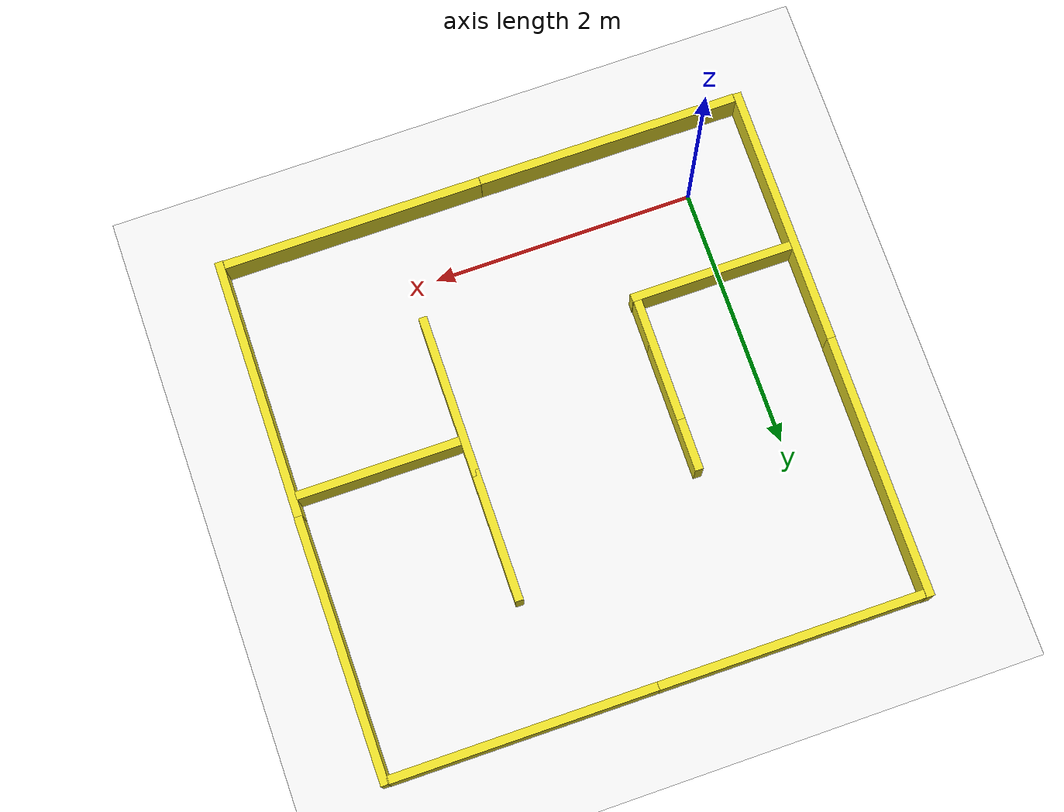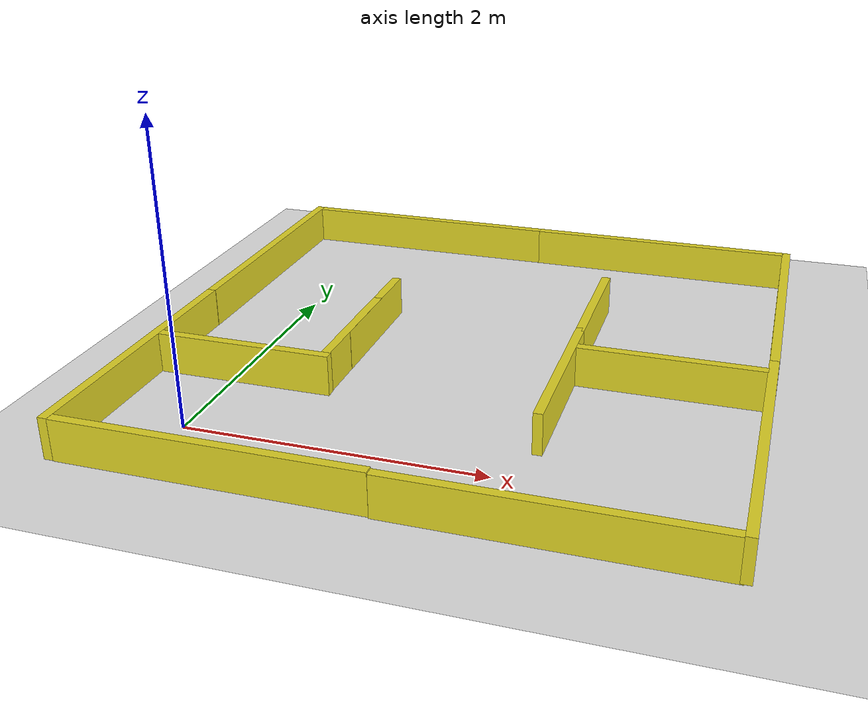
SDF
<sdf version="1.7">
 <world name="default">
  <model name="ground_plane">
   <static>1</static>
   <link name="link">
    <collision name="collision">
     <geometry><plane><normal>0 0 1</normal><size>20 20</size></plane></geometry>
     <surface>
      <contact><collide_bitmask>65535</collide_bitmask></contact>
      <friction><ode><mu>100</mu><mu2>50</mu2></ode></friction>
     </surface>
    </collision>
    <visual name="visual">
     <cast_shadows>0</cast_shadows>
     <geometry><plane><normal>0 0 1</normal><size>20 20</size></plane></geometry>
     <material>
      <script><uri>file://media/materials/scripts/gazebo.material</uri><name>Gazebo/White</name></script>
     </material>
    </visual>
   </link>
  </model>
  <gravity>0 0 -9.8</gravity>
  <magnetic_field>6e-06 2.3e-05 -4.2e-05</magnetic_field>
  <atmosphere type="adiabatic"/>
  <physics type="ode">
   <max_step_size>0.001</max_step_size>
   <real_time_factor>1</real_time_factor>
   <real_time_update_rate>1000</real_time_update_rate>
  </physics>
  <scene><ambient>0.4 0.4 0.4 1</ambient><background>0.7 0.7 0.7 1</background><shadows>1</shadows></scene>
  <spherical_coordinates>
   <surface_model>EARTH_WGS84</surface_model>
   <latitude_deg>0</latitude_deg>
   <longitude_deg>0</longitude_deg>
   <elevation>0</elevation>
   <heading_deg>0</heading_deg>
  </spherical_coordinates>
  <light name="sun" type="directional">
   <pose>13.0104 0.905764 10 0 -0 0</pose>
   <diffuse>0.8 0.8 0.8 1</diffuse>
   <specular>0.2 0.2 0.2 1</specular>
   <attenuation>
    <range>1000</range>
    <constant>0.9</constant>
    <linear>0.01</linear>
    <quadratic>0.001</quadratic>
   </attenuation>
   <direction>-0.5 0.1 -0.9</direction>
   <spot><inner_angle>0</inner_angle><outer_angle>0</outer_angle><falloff>0</falloff></spot>
  </light>
  <model name="unit_box_1">
   <pose>2.4706 -0.543063 0.13387 0 -2.2e-05 -1.57097</pose>
   <static>1</static>
   <link name="link">
    <inertial>
     <mass>1</mass>
     <inertia>
      <ixx>0.166667</ixx>
      <ixy>0</ixy>
      <ixz>0</ixz>
      <iyy>0.166667</iyy>
      <iyz>0</iyz>
      <izz>0.166667</izz>
     </inertia>
    </inertial>
    <collision name="collision"><geometry><box><size>0.063652 2.00615 0.284898</size></box></geometry></collision>
    <visual name="visual">
     <geometry><box><size>0.063652 2.00615 0.284898</size></box></geometry>
     <material>
      <script><name>Gazebo/DarkYellow</name><uri>file://media/materials/scripts/gazebo.material</uri></script>
     </material>
    </visual>
   </link>
  </model>
  <model name="unit_box_2">
   <pose>-0.570639 0.437784 0.142393 5.7e-05 1e-06 3.14006</pose>
   <static>1</static>
   <link name="link">
    <inertial>
     <mass>1</mass>
     <inertia>
      <ixx>0.166667</ixx>
      <ixy>0</ixy>
      <ixz>0</ixz>
      <iyy>0.166667</iyy>
      <iyz>0</iyz>
      <izz>0.166667</izz>
     </inertia>
    </inertial>
    <collision name="collision"><geometry><box><size>0.063652 2.00615 0.284898</size></box></geometry></collision>
    <visual name="visual">
     <geometry><box><size>0.063652 2.00615 0.284898</size></box></geometry>
     <material>
      <script><name>Gazebo/DarkYellow</name><uri>file://media/materials/scripts/gazebo.material</uri></script>
     </material>
    </visual>
   </link>
  </model>
  <model name="unit_box_3">
   <static>1</static>
   <pose>-0.565895 2.44425 0.142449 0 -9e-06 3.14013</pose>
   <link name="link">
    <inertial>
     <mass>1</mass>
     <inertia>
      <ixx>0.166667</ixx>
      <ixy>0</ixy>
      <ixz>0</ixz>
      <iyy>0.166667</iyy>
      <iyz>0</iyz>
      <izz>0.166667</izz>
     </inertia>
    </inertial>
    <collision name="collision"><geometry><box><size>0.063652 2.00615 0.284898</size></box></geometry></collision>
    <visual name="visual">
     <geometry><box><size>0.063652 2.00615 0.284898</size></box></geometry>
     <material>
      <script><name>Gazebo/DarkYellow</name><uri>file://media/materials/scripts/gazebo.material</uri></script>
     </material>
    </visual>
   </link>
  </model>
  <model name="unit_box_7">
   <pose>3.50191 2.4302 0.142449 0 -5e-06 -3.14113</pose>
   <static>1</static>
   <link name="link">
    <inertial>
     <mass>1</mass>
     <inertia>
      <ixx>0.166667</ixx>
      <ixy>0</ixy>
      <ixz>0</ixz>
      <iyy>0.166667</iyy>
      <iyz>0</iyz>
      <izz>0.166667</izz>
     </inertia>
    </inertial>
    <collision name="collision"><geometry><box><size>0.063652 2.00615 0.284898</size></box></geometry></collision>
    <visual name="visual">
     <geometry><box><size>0.063652 2.00615 0.284898</size></box></geometry>
     <material>
      <script><name>Gazebo/DarkYellow</name><uri>file://media/materials/scripts/gazebo.material</uri></script>
     </material>
    </visual>
   </link>
  </model>
  <model name="unit_box_13">
   <pose>0.463439 -0.539309 0.14245 0 2.2e-05 -1.57277</pose>
   <static>1</static>
   <link name="link">
    <inertial>
     <mass>1</mass>
     <inertia>
      <ixx>0.166667</ixx>
      <ixy>0</ixy>
      <ixz>0</ixz>
      <iyy>0.166667</iyy>
      <iyz>0</iyz>
      <izz>0.166667</izz>
     </inertia>
    </inertial>
    <collision name="collision"><geometry><box><size>0.063652 2.00615 0.284898</size></box></geometry></collision>
    <visual name="visual">
     <geometry><box><size>0.063652 2.00615 0.284898</size></box></geometry>
     <material>
      <script><name>Gazebo/DarkYellow</name><uri>file://media/materials/scripts/gazebo.material</uri></script>
     </material>
    </visual>
   </link>
  </model>
  <model name="unit_box_21">
   <pose>3.4913 0.427067 0.142398 1e-06 -5.7e-05 -0.008919</pose>
   <static>1</static>
   <link name="link">
    <inertial>
     <mass>1</mass>
     <inertia>
      <ixx>0.166667</ixx>
      <ixy>0</ixy>
      <ixz>0</ixz>
      <iyy>0.166667</iyy>
      <iyz>0</iyz>
      <izz>0.166667</izz>
     </inertia>
    </inertial>
    <collision name="collision"><geometry><box><size>0.063652 2.00615 0.284898</size></box></geometry></collision>
    <visual name="visual">
     <geometry><box><size>0.063652 2.00615 0.284898</size></box></geometry>
     <material>
      <script><name>Gazebo/DarkYellow</name><uri>file://media/materials/scripts/gazebo.material</uri></script>
     </material>
    </visual>
   </link>
  </model>
  <model name="unit_box_22">
   <pose>0.671107 1.15382 0.142403 1e-06 -5.7e-05 -0.002134</pose>
   <static>1</static>
   <link name="link">
    <inertial>
     <mass>1</mass>
     <inertia>
      <ixx>0.166667</ixx>
      <ixy>0</ixy>
      <ixz>0</ixz>
      <iyy>0.166667</iyy>
      <iyz>0</iyz>
      <izz>0.166667</izz>
     </inertia>
    </inertial>
    <collision name="collision"><geometry><box><size>0.063652 1 0.284898</size></box></geometry></collision>
    <visual name="visual">
     <geometry><box><size>0.063652 1 0.284898</size></box></geometry>
     <material>
      <script><name>Gazebo/DarkYellow</name><uri>file://media/materials/scripts/gazebo.material</uri></script>
     </material>
    </visual>
   </link>
  </model>
  <model name="unit_box_19_clone">
   <pose>0.471398 3.41126 0.142392 5.7e-05 1e-06 -1.57293</pose>
   <static>1</static>
   <link name="link">
    <inertial>
     <mass>1</mass>
     <inertia>
      <ixx>0.166667</ixx>
      <ixy>0</ixy>
      <ixz>0</ixz>
      <iyy>0.166667</iyy>
      <iyz>0</iyz>
      <izz>0.166667</izz>
     </inertia>
    </inertial>
    <collision name="collision"><geometry><box><size>0.063652 2.00615 0.284898</size></box></geometry></collision>
    <visual name="visual">
     <geometry><box><size>0.063652 2.00615 0.284898</size></box></geometry>
     <material>
      <script><name>Gazebo/DarkYellow</name><uri>file://media/materials/scripts/gazebo.material</uri></script>
     </material>
    </visual>
   </link>
  </model>
  <model name="unit_box_22_clone">
   <pose>0.081865 0.681876 0.142391 5.7e-05 1e-06 -1.57293</pose>
   <static>1</static>
   <link name="link">
    <inertial>
     <mass>1</mass>
     <inertia>
      <ixx>0.166667</ixx>
      <ixy>0</ixy>
      <ixz>0</ixz>
      <iyy>0.166667</iyy>
      <iyz>0</iyz>
      <izz>0.166667</izz>
     </inertia>
    </inertial>
    <collision name="collision"><geometry><box><size>0.063652 1.25 0.284898</size></box></geometry></collision>
    <visual name="visual">
     <geometry><box><size>0.063652 1.25 0.284898</size></box></geometry>
     <material>
      <script><name>Gazebo/DarkYellow</name><uri>file://media/materials/scripts/gazebo.material</uri></script>
     </material>
    </visual>
   </link>
  </model>
  <model name="unit_box_22_clone_clone">
   <pose>2.19814 0.940386 0.142392 1e-06 -5.7e-05 -0.002134</pose>
   <static>1</static>
   <link name="link">
    <inertial>
     <mass>1</mass>
     <inertia>
      <ixx>0.166667</ixx>
      <ixy>0</ixy>
      <ixz>0</ixz>
      <iyy>0.166667</iyy>
      <iyz>0</iyz>
      <izz>0.166667</izz>
     </inertia>
    </inertial>
    <collision name="collision"><geometry><box><size>0.063652 1.25 0.284898</size></box></geometry></collision>
    <visual name="visual">
     <geometry><box><size>0.063652 1.25 0.284898</size></box></geometry>
     <material>
      <script><name>Gazebo/DarkYellow</name><uri>file://media/materials/scripts/gazebo.material</uri></script>
     </material>
    </visual>
   </link>
  </model>
  <model name="unit_box_19_clone_clone">
   <pose>2.47399 3.40643 0.142392 5.7e-05 1e-06 -1.57293</pose>
   <static>1</static>
   <link name="link">
    <inertial>
     <mass>1</mass>
     <inertia>
      <ixx>0.166667</ixx>
      <ixy>0</ixy>
      <ixz>0</ixz>
      <iyy>0.166667</iyy>
      <iyz>0</iyz>
      <izz>0.166667</izz>
     </inertia>
    </inertial>
    <collision name="collision"><geometry><box><size>0.063652 2.00615 0.284898</size></box></geometry></collision>
    <visual name="visual">
     <geometry><box><size>0.063652 2.00615 0.284898</size></box></geometry>
     <material>
      <script><name>Gazebo/DarkYellow</name><uri>file://media/materials/scripts/gazebo.material</uri></script>
     </material>
    </visual>
   </link>
  </model>
  <model name="unit_box_22_clone_0">
   <pose>0.67272 1.54871 0.142391 1e-06 -5.7e-05 -0.002134</pose>
   <static>1</static>
   <link name="link">
    <inertial>
     <mass>1</mass>
     <inertia>
      <ixx>0.166667</ixx>
      <ixy>0</ixy>
      <ixz>0</ixz>
      <iyy>0.166667</iyy>
      <iyz>0</iyz>
      <izz>0.166667</izz>
     </inertia>
    </inertial>
    <collision name="collision"><geometry><box><size>0.063652 1 0.284898</size></box></geometry></collision>
    <visual name="visual">
     <geometry><box><size>0.063652 1 0.284898</size></box></geometry>
     <material>
      <script><name>Gazebo/DarkYellow</name><uri>file://media/materials/scripts/gazebo.material</uri></script>
     </material>
    </visual>
   </link>
  </model>
  <model name="unit_box_22_clone_1">
   <pose>2.20058 2.01876 0.142393 1e-06 -5.7e-05 -0.002134</pose>
   <static>1</static>
   <link name="link">
    <inertial>
     <mass>1</mass>
     <inertia>
      <ixx>0.166667</ixx>
      <ixy>0</ixy>
      <ixz>0</ixz>
      <iyy>0.166667</iyy>
      <iyz>0</iyz>
      <izz>0.166667</izz>
     </inertia>
    </inertial>
    <collision name="collision"><geometry><box><size>0.063652 1 0.284898</size></box></geometry></collision>
    <visual name="visual">
     <geometry><box><size>0.063652 1 0.284898</size></box></geometry>
     <material>
      <script><name>Gazebo/DarkYellow</name><uri>file://media/materials/scripts/gazebo.material</uri></script>
     </material>
    </visual>
   </link>
  </model>
  <model name="unit_box_22_clone_clone_0">
   <pose>2.84749 1.28034 0.142391 5.7e-05 1e-06 -1.57293</pose>
   <static>1</static>
   <link name="link">
    <inertial>
     <mass>1</mass>
     <inertia>
      <ixx>0.166667</ixx>
      <ixy>0</ixy>
      <ixz>0</ixz>
      <iyy>0.166667</iyy>
      <iyz>0</iyz>
      <izz>0.166667</izz>
     </inertia>
    </inertial>
    <collision name="collision"><geometry><box><size>0.063652 1.25 0.284898</size></box></geometry></collision>
    <visual name="visual">
     <geometry><box><size>0.063652 1.25 0.284898</size></box></geometry>
     <material>
      <script><name>Gazebo/DarkYellow</name><uri>file://media/materials/scripts/gazebo.material</uri></script>
     </material>
    </visual>
   </link>
  </model>
 </world>
</sdf>
